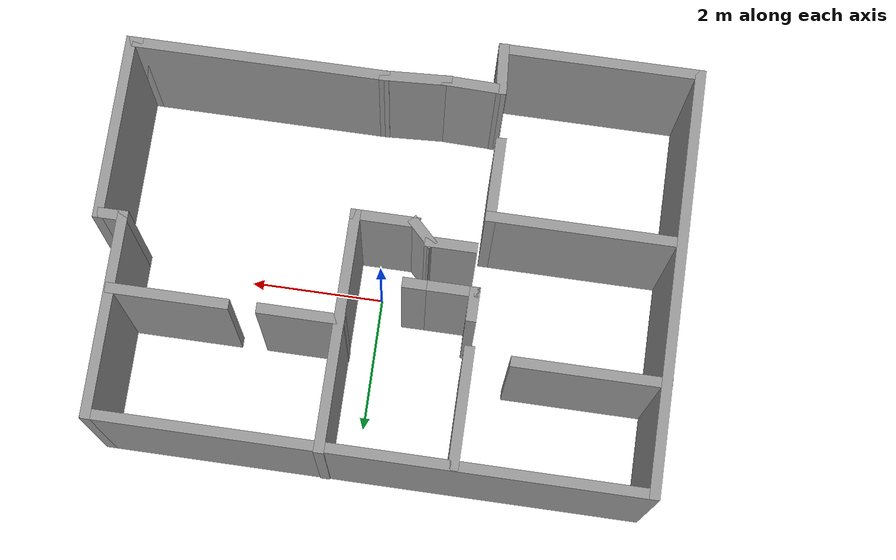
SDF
<?xml version='1.0'?>
<sdf version='1.6'>
  <model name='Casa_easy'>
    <pose frame=''>-0.06102 -0.313956 0 0 -0 0</pose>
    <link name='Wall_16'>
      <collision name='Wall_16_Collision'>
        <geometry>
          <box>
            <size>3.75 0.15 2.5</size>
          </box>
        </geometry>
        <pose frame=''>0 0 1.25 0 -0 0</pose>
      </collision>
      <visual name='Wall_16_Visual'>
        <pose frame=''>0 0 1.25 0 -0 0</pose>
        <geometry>
          <box>
            <size>3.75 0.15 2.5</size>
          </box>
        </geometry>
        <material>
          <script>
            <uri>file://media/materials/scripts/gazebo.material</uri>
            <name>Gazebo/Grey</name>
          </script>
          <ambient>1 1 1 1</ambient>
        </material>
        <meta>
          <layer>0</layer>
        </meta>
      </visual>
      <pose frame=''>2.20084 -2.40408 0 0 -0 0</pose>
    </link>
    <link name='Wall_17'>
      <collision name='Wall_17_Collision'>
        <geometry>
          <box>
            <size>0.25 0.15 2.5</size>
          </box>
        </geometry>
        <pose frame=''>0 0 1.25 0 -0 0</pose>
      </collision>
      <visual name='Wall_17_Visual'>
        <pose frame=''>0 0 1.25 0 -0 0</pose>
        <geometry>
          <box>
            <size>0.25 0.15 2.5</size>
          </box>
        </geometry>
        <material>
          <script>
            <uri>file://media/materials/scripts/gazebo.material</uri>
            <name>Gazebo/Grey</name>
          </script>
          <ambient>1 1 1 1</ambient>
        </material>
        <meta>
          <layer>0</layer>
        </meta>
      </visual>
      <pose frame=''>4.05084 -2.40408 0 0 -0 0</pose>
    </link>
    <link name='Wall_18'>
      <collision name='Wall_18_Collision'>
        <geometry>
          <box>
            <size>2.75 0.15 2.5</size>
          </box>
        </geometry>
        <pose frame=''>0 0 1.25 0 -0 0</pose>
      </collision>
      <visual name='Wall_18_Visual'>
        <pose frame=''>0 0 1.25 0 -0 0</pose>
        <geometry>
          <box>
            <size>2.75 0.15 2.5</size>
          </box>
        </geometry>
        <material>
          <script>
            <uri>file://media/materials/scripts/gazebo.material</uri>
            <name>Gazebo/Grey</name>
          </script>
          <ambient>1 1 1 1</ambient>
        </material>
        <meta>
          <layer>0</layer>
        </meta>
      </visual>
      <pose frame=''>4.10084 -1.10407 0 0 -0 1.5708</pose>
    </link>
    <link name='Wall_19'>
      <collision name='Wall_19_Collision'>
        <geometry>
          <box>
            <size>0.5 0.15 2.5</size>
          </box>
        </geometry>
        <pose frame=''>0 0 1.25 0 -0 0</pose>
      </collision>
      <visual name='Wall_19_Visual'>
        <pose frame=''>0 0 1.25 0 -0 0</pose>
        <geometry>
          <box>
            <size>0.5 0.15 2.5</size>
          </box>
        </geometry>
        <material>
          <script>
            <uri>file://media/materials/scripts/gazebo.material</uri>
            <name>Gazebo/Grey</name>
          </script>
          <ambient>1 1 1 1</ambient>
        </material>
        <meta>
          <layer>0</layer>
        </meta>
      </visual>
      <pose frame=''>3.92584 0.195925 0 0 -0 3.14159</pose>
    </link>
    <link name='Wall_20'>
      <collision name='Wall_20_Collision'>
        <geometry>
          <box>
            <size>3 0.15 2.5</size>
          </box>
        </geometry>
        <pose frame=''>0 0 1.25 0 -0 0</pose>
      </collision>
      <visual name='Wall_20_Visual'>
        <pose frame=''>0 0 1.25 0 -0 0</pose>
        <geometry>
          <box>
            <size>3 0.15 2.5</size>
          </box>
        </geometry>
        <material>
          <script>
            <uri>file://media/materials/scripts/gazebo.material</uri>
            <name>Gazebo/Grey</name>
          </script>
          <ambient>1 1 1 1</ambient>
        </material>
        <meta>
          <layer>0</layer>
        </meta>
      </visual>
      <pose frame=''>3.75084 1.62092 0 0 -0 1.5708</pose>
    </link>
    <link name='Wall_21'>
      <collision name='Wall_21_Collision'>
        <geometry>
          <box>
            <size>8 0.15 2.5</size>
          </box>
        </geometry>
        <pose frame=''>0 0 1.25 0 -0 0</pose>
      </collision>
      <visual name='Wall_21_Visual'>
        <pose frame=''>0 0 1.25 0 -0 0</pose>
        <geometry>
          <box>
            <size>8 0.15 2.5</size>
          </box>
        </geometry>
        <material>
          <script>
            <uri>file://media/materials/scripts/gazebo.material</uri>
            <name>Gazebo/Grey</name>
          </script>
          <ambient>1 1 1 1</ambient>
        </material>
        <meta>
          <layer>0</layer>
        </meta>
      </visual>
      <pose frame=''>-0.17416 3.04592 0 0 -0 3.14159</pose>
    </link>
    <link name='Wall_22'>
      <collision name='Wall_22_Collision'>
        <geometry>
          <box>
            <size>6.25 0.15 2.5</size>
          </box>
        </geometry>
        <pose frame=''>0 0 1.25 0 -0 0</pose>
      </collision>
      <visual name='Wall_22_Visual'>
        <pose frame=''>0 0 1.25 0 -0 0</pose>
        <geometry>
          <box>
            <size>6.25 0.15 2.5</size>
          </box>
        </geometry>
        <material>
          <script>
            <uri>file://media/materials/scripts/gazebo.material</uri>
            <name>Gazebo/Grey</name>
          </script>
          <ambient>1 1 1 1</ambient>
        </material>
        <meta>
          <layer>0</layer>
        </meta>
      </visual>
      <pose frame=''>-4.09916 -0.004075 0 0 -0 -1.5708</pose>
    </link>
    <link name='Wall_25'>
      <collision name='Wall_25_Collision'>
        <geometry>
          <box>
            <size>1.05139 0.15 2.5</size>
          </box>
        </geometry>
        <pose frame=''>0 0 1.25 0 -0 0</pose>
      </collision>
      <visual name='Wall_25_Visual'>
        <pose frame=''>0 0 1.25 0 -0 0</pose>
        <geometry>
          <box>
            <size>1.05139 0.15 2.5</size>
          </box>
        </geometry>
        <material>
          <script>
            <uri>file://media/materials/scripts/gazebo.material</uri>
            <name>Gazebo/Grey</name>
          </script>
          <ambient>1 1 1 1</ambient>
        </material>
        <meta>
          <layer>0</layer>
        </meta>
      </visual>
      <pose frame=''>-0.04916 -2.42908 0 0 -0 0.055499</pose>
    </link>
    <link name='Wall_33'>
      <collision name='Wall_33_Collision'>
        <geometry>
          <box>
            <size>2.25 0.15 2.5</size>
          </box>
        </geometry>
        <pose frame=''>0 0 1.25 0 -0 0</pose>
      </collision>
      <visual name='Wall_33_Visual'>
        <pose frame=''>0 0 1.25 0 -0 0</pose>
        <geometry>
          <box>
            <size>2.25 0.15 2.5</size>
          </box>
        </geometry>
        <material>
          <script>
            <uri>file://media/materials/scripts/gazebo.material</uri>
            <name>Gazebo/Grey</name>
          </script>
          <ambient>1 1 1 1</ambient>
        </material>
        <meta>
          <layer>0</layer>
        </meta>
      </visual>
      <pose frame=''>-3.05084 1.4942 0 0 -0 0</pose>
    </link>
    <link name='Wall_35'>
      <collision name='Wall_35_Collision'>
        <geometry>
          <box>
            <size>1.75 0.15 2.5</size>
          </box>
        </geometry>
        <pose frame=''>0 0 1.25 0 -0 0</pose>
      </collision>
      <visual name='Wall_35_Visual'>
        <pose frame=''>0 0 1.25 0 -0 0</pose>
        <geometry>
          <box>
            <size>1.75 0.15 2.5</size>
          </box>
        </geometry>
        <material>
          <script>
            <uri>file://media/materials/scripts/gazebo.material</uri>
            <name>Gazebo/Grey</name>
          </script>
          <ambient>1 1 1 1</ambient>
        </material>
        <meta>
          <layer>0</layer>
        </meta>
      </visual>
      <pose frame=''>-1.34084 2.2342 0 0 -0 -1.5708</pose>
    </link>
    <link name='Wall_37'>
      <collision name='Wall_37_Collision'>
        <geometry>
          <box>
            <size>3.5 0.15 2.5</size>
          </box>
        </geometry>
        <pose frame=''>0 0 1.25 0 -0 0</pose>
      </collision>
      <visual name='Wall_37_Visual'>
        <pose frame=''>0 0 1.25 0 -0 0</pose>
        <geometry>
          <box>
            <size>3.5 0.15 2.5</size>
          </box>
        </geometry>
        <material>
          <script>
            <uri>file://media/materials/scripts/gazebo.material</uri>
            <name>Gazebo/Grey</name>
          </script>
          <ambient>1 1 1 1</ambient>
        </material>
        <meta>
          <layer>0</layer>
        </meta>
      </visual>
      <pose frame=''>0.507989 1.38391 0 0 -0 -1.5708</pose>
    </link>
    <link name='Wall_38'>
      <collision name='Wall_38_Collision'>
        <geometry>
          <box>
            <size>1 0.15 2.5</size>
          </box>
        </geometry>
        <pose frame=''>0 0 1.25 0 -0 0</pose>
      </collision>
      <visual name='Wall_38_Visual'>
        <pose frame=''>0 0 1.25 0 -0 0</pose>
        <geometry>
          <box>
            <size>1 0.15 2.5</size>
          </box>
        </geometry>
        <material>
          <script>
            <uri>file://media/materials/scripts/gazebo.material</uri>
            <name>Gazebo/Grey</name>
          </script>
          <ambient>1 1 1 1</ambient>
        </material>
        <meta>
          <layer>0</layer>
        </meta>
      </visual>
      <pose frame=''>0.082989 -0.291092 0 0 -0 3.14159</pose>
    </link>
    <link name='Wall_39'>
      <collision name='Wall_39_Collision'>
        <geometry>
          <box>
            <size>0.5 0.15 2.5</size>
          </box>
        </geometry>
        <pose frame=''>0 0 1.25 0 -0 0</pose>
      </collision>
      <visual name='Wall_39_Visual'>
        <pose frame=''>0 0 1.25 0 -0 0</pose>
        <geometry>
          <box>
            <size>0.5 0.15 2.5</size>
          </box>
        </geometry>
        <material>
          <script>
            <uri>file://media/materials/scripts/gazebo.material</uri>
            <name>Gazebo/Grey</name>
          </script>
          <ambient>1 1 1 1</ambient>
        </material>
        <meta>
          <layer>0</layer>
        </meta>
      </visual>
      <pose frame=''>-0.465755 -0.167348 0 0 -0 2.35619</pose>
    </link>
    <link name='Wall_40'>
      <collision name='Wall_40_Collision'>
        <geometry>
          <box>
            <size>0.75 0.15 2.5</size>
          </box>
        </geometry>
        <pose frame=''>0 0 1.25 0 -0 0</pose>
      </collision>
      <visual name='Wall_40_Visual'>
        <pose frame=''>0 0 1.25 0 -0 0</pose>
        <geometry>
          <box>
            <size>0.75 0.15 2.5</size>
          </box>
        </geometry>
        <material>
          <script>
            <uri>file://media/materials/scripts/gazebo.material</uri>
            <name>Gazebo/Grey</name>
          </script>
          <ambient>1 1 1 1</ambient>
        </material>
        <meta>
          <layer>0</layer>
        </meta>
      </visual>
      <pose frame=''>-0.889499 -0.043604 0 0 -0 3.14159</pose>
    </link>
    <link name='Wall_42'>
      <collision name='Wall_42_Collision'>
        <geometry>
          <box>
            <size>0.5 0.15 2.5</size>
          </box>
        </geometry>
        <pose frame=''>0 0 1.25 0 -0 0</pose>
      </collision>
      <visual name='Wall_42_Visual'>
        <pose frame=''>0 0 1.25 0 -0 0</pose>
        <geometry>
          <box>
            <size>0.5 0.15 2.5</size>
          </box>
        </geometry>
        <material>
          <script>
            <uri>file://media/materials/scripts/gazebo.material</uri>
            <name>Gazebo/Grey</name>
          </script>
          <ambient>1 1 1 1</ambient>
        </material>
        <meta>
          <layer>0</layer>
        </meta>
      </visual>
      <pose frame=''>-1.30779 0.765503 0 0 -0 -1.5708</pose>
    </link>
    <link name='Wall_43'>
      <collision name='Wall_43_Collision'>
        <geometry>
          <box>
            <size>0.75 0.15 2.5</size>
          </box>
        </geometry>
        <pose frame=''>0 0 1.25 0 -0 0</pose>
      </collision>
      <visual name='Wall_43_Visual'>
        <pose frame=''>0 0 1.25 0 -0 0</pose>
        <geometry>
          <box>
            <size>0.75 0.15 2.5</size>
          </box>
        </geometry>
        <material>
          <script>
            <uri>file://media/materials/scripts/gazebo.material</uri>
            <name>Gazebo/Grey</name>
          </script>
          <ambient>1 1 1 1</ambient>
        </material>
        <meta>
          <layer>0</layer>
        </meta>
      </visual>
      <pose frame=''>-1.00779 0.590503 0 0 -0 0</pose>
    </link>
    <link name='Wall_44'>
      <collision name='Wall_44_Collision'>
        <geometry>
          <box>
            <size>0.5 0.15 2.5</size>
          </box>
        </geometry>
        <pose frame=''>0 0 1.25 0 -0 0</pose>
      </collision>
      <visual name='Wall_44_Visual'>
        <pose frame=''>0 0 1.25 0 -0 0</pose>
        <geometry>
          <box>
            <size>0.5 0.15 2.5</size>
          </box>
        </geometry>
        <material>
          <script>
            <uri>file://media/materials/scripts/gazebo.material</uri>
            <name>Gazebo/Grey</name>
          </script>
          <ambient>1 1 1 1</ambient>
        </material>
        <meta>
          <layer>0</layer>
        </meta>
      </visual>
      <pose frame=''>-0.532787 0.590503 0 0 -0 0</pose>
    </link>
    <link name='Wall_46'>
      <collision name='Wall_46_Collision'>
        <geometry>
          <box>
            <size>1.25 0.15 2.5</size>
          </box>
        </geometry>
        <pose frame=''>0 0 1.25 0 -0 0</pose>
      </collision>
      <visual name='Wall_46_Visual'>
        <pose frame=''>0 0 1.25 0 -0 0</pose>
        <geometry>
          <box>
            <size>1.25 0.15 2.5</size>
          </box>
        </geometry>
        <material>
          <script>
            <uri>file://media/materials/scripts/gazebo.material</uri>
            <name>Gazebo/Grey</name>
          </script>
          <ambient>1 1 1 1</ambient>
        </material>
        <meta>
          <layer>0</layer>
        </meta>
      </visual>
      <pose frame=''>1.04934 1.24313 0 0 -0 0</pose>
    </link>
    <link name='Wall_48'>
      <collision name='Wall_48_Collision'>
        <geometry>
          <box>
            <size>1.75 0.15 2.5</size>
          </box>
        </geometry>
        <pose frame=''>0 0 1.25 0 -0 0</pose>
      </collision>
      <visual name='Wall_48_Visual'>
        <pose frame=''>0 0 1.25 0 -0 0</pose>
        <geometry>
          <box>
            <size>1.75 0.15 2.5</size>
          </box>
        </geometry>
        <material>
          <script>
            <uri>file://media/materials/scripts/gazebo.material</uri>
            <name>Gazebo/Grey</name>
          </script>
          <ambient>1 1 1 1</ambient>
        </material>
        <meta>
          <layer>0</layer>
        </meta>
      </visual>
      <pose frame=''>2.93354 1.25178 0 0 -0 0</pose>
    </link>
    <link name='Wall_50'>
      <collision name='Wall_50_Collision'>
        <geometry>
          <box>
            <size>0.941431 0.15 2.5</size>
          </box>
        </geometry>
        <pose frame=''>0 0 1.25 0 -0 0</pose>
      </collision>
      <visual name='Wall_50_Visual'>
        <pose frame=''>0 0 1.25 0 -0 0</pose>
        <geometry>
          <box>
            <size>0.941431 0.15 2.5</size>
          </box>
        </geometry>
        <material>
          <script>
            <uri>file://media/materials/scripts/gazebo.material</uri>
            <name>Gazebo/Grey</name>
          </script>
          <ambient>1 1 1 1</ambient>
        </material>
        <meta>
          <layer>0</layer>
        </meta>
      </visual>
      <pose frame=''>-0.894782 -2.44544 0 0 -0 -0.021814</pose>
    </link>
    <link name='Wall_53'>
      <collision name='Wall_53_Collision'>
        <geometry>
          <box>
            <size>2.75 0.15 2.5</size>
          </box>
        </geometry>
        <pose frame=''>0 0 1.25 0 -0 0</pose>
      </collision>
      <visual name='Wall_53_Visual'>
        <pose frame=''>0 0 1.25 0 -0 0</pose>
        <geometry>
          <box>
            <size>2.75 0.15 2.5</size>
          </box>
        </geometry>
        <material>
          <script>
            <uri>file://media/materials/scripts/gazebo.material</uri>
            <name>Gazebo/Grey</name>
          </script>
          <ambient>1 1 1 1</ambient>
        </material>
        <meta>
          <layer>0</layer>
        </meta>
      </visual>
      <pose frame=''>-2.68621 -0.528962 0 0 -0 0</pose>
    </link>
    <link name='Wall_54'>
      <collision name='Wall_54_Collision'>
        <geometry>
          <box>
            <size>1.25 0.15 2.5</size>
          </box>
        </geometry>
        <pose frame=''>0 0 1.25 0 -0 0</pose>
      </collision>
      <visual name='Wall_54_Visual'>
        <pose frame=''>0 0 1.25 0 -0 0</pose>
        <geometry>
          <box>
            <size>1.25 0.15 2.5</size>
          </box>
        </geometry>
        <material>
          <script>
            <uri>file://media/materials/scripts/gazebo.material</uri>
            <name>Gazebo/Grey</name>
          </script>
          <ambient>1 1 1 1</ambient>
        </material>
        <meta>
          <layer>0</layer>
        </meta>
      </visual>
      <pose frame=''>-1.38621 -1.07896 0 0 -0 -1.5708</pose>
    </link>
    <link name='Wall_57'>
      <collision name='Wall_57_Collision'>
        <geometry>
          <box>
            <size>3 0.15 2.5</size>
          </box>
        </geometry>
        <pose frame=''>0 0 1.25 0 -0 0</pose>
      </collision>
      <visual name='Wall_57_Visual'>
        <pose frame=''>0 0 1.25 0 -0 0</pose>
        <geometry>
          <box>
            <size>3 0.15 2.5</size>
          </box>
        </geometry>
        <material>
          <script>
            <uri>file://media/materials/scripts/gazebo.material</uri>
            <name>Gazebo/Grey</name>
          </script>
          <ambient>1 1 1 1</ambient>
        </material>
        <meta>
          <layer>0</layer>
        </meta>
      </visual>
      <pose frame=''>-2.67416 -3.05408 0 0 -0 0</pose>
    </link>
    <link name='Wall_58'>
      <collision name='Wall_58_Collision'>
        <geometry>
          <box>
            <size>0.76864 0.15 2.5</size>
          </box>
        </geometry>
        <pose frame=''>0 0 1.25 0 -0 0</pose>
      </collision>
      <visual name='Wall_58_Visual'>
        <pose frame=''>0 0 1.25 0 -0 0</pose>
        <geometry>
          <box>
            <size>0.76864 0.15 2.5</size>
          </box>
        </geometry>
        <material>
          <script>
            <uri>file://media/materials/scripts/gazebo.material</uri>
            <name>Gazebo/Grey</name>
          </script>
          <ambient>1 1 1 1</ambient>
        </material>
        <meta>
          <layer>0</layer>
        </meta>
      </visual>
      <pose frame=''>-1.26978 -2.74544 0 0 -0 1.63751</pose>
    </link>
    <static>1</static>
  </model>
</sdf>
